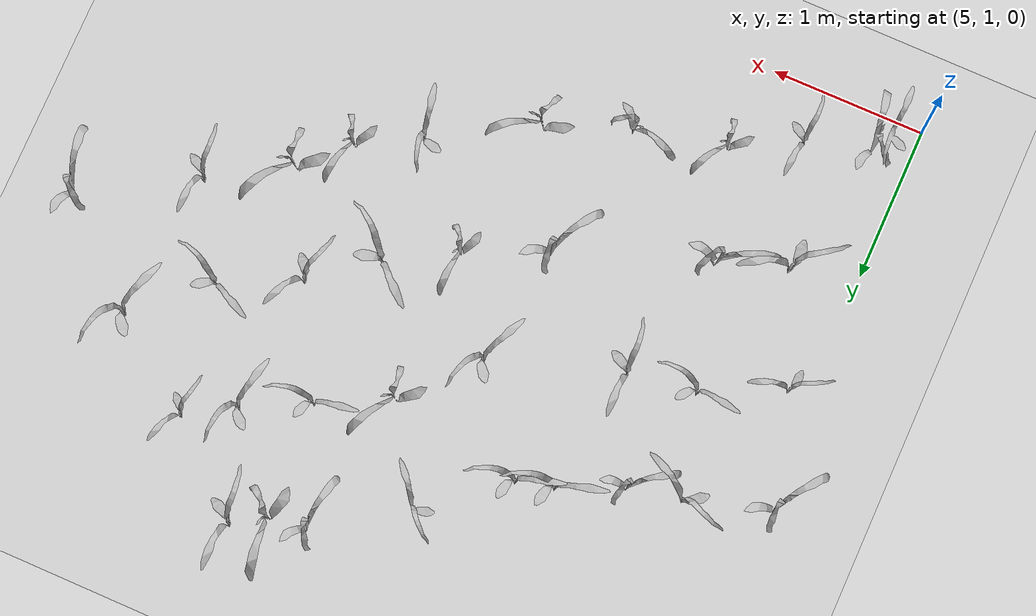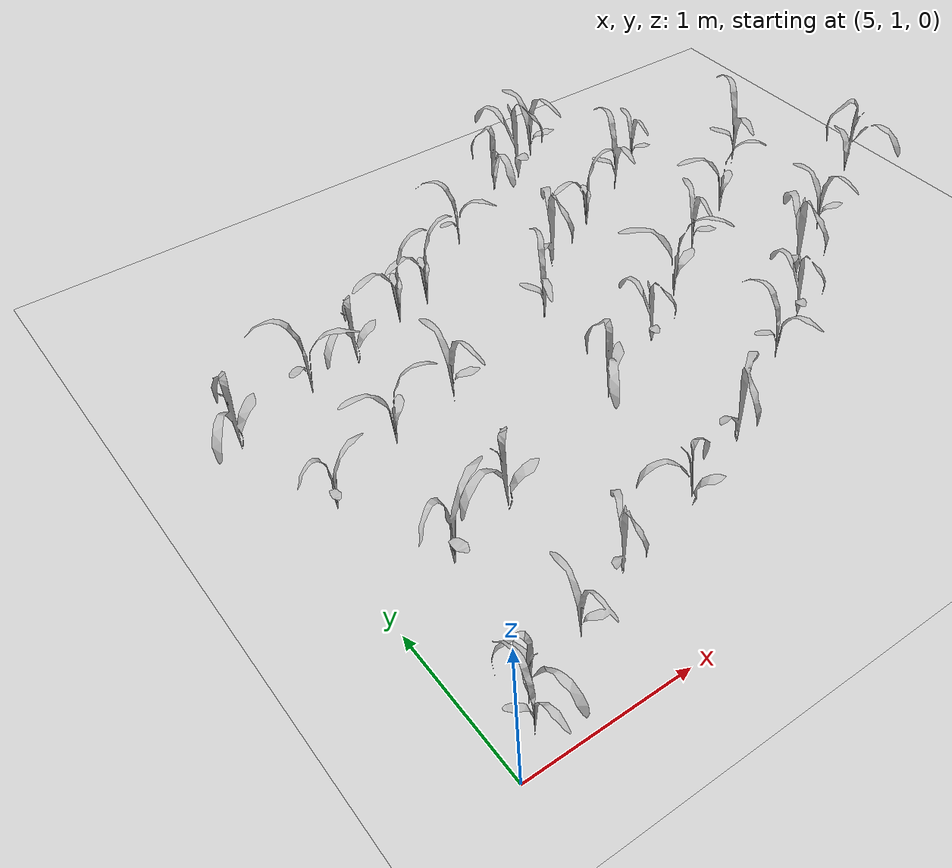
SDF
<sdf version="1.6">
 <world name="default">
  <model name="ground_plane">
   <static>1</static>
   <link name="link">
    <collision name="collision">
     <geometry><plane><normal>0 0 1</normal><size>100 100</size></plane></geometry>
     <surface>
      <contact><collide_bitmask>65535</collide_bitmask></contact>
      <friction><ode><mu>100</mu><mu2>50</mu2></ode></friction>
     </surface>
    </collision>
    <visual name="visual">
     <cast_shadows>0</cast_shadows>
     <geometry><plane><normal>0 0 1</normal><size>100 100</size></plane></geometry>
     <material>
      <script><uri>file://media/materials/scripts/gazebo.material</uri><name>Gazebo/Grey</name></script>
     </material>
    </visual>
   </link>
  </model>
  <model name="maize_02_0034">
   <pose>5.173450004030893 1.1315763102588983 0.05 0 -0 0.6013101745679047</pose>
   <link name="maize_02_0034_link">
    <inertial>
     <mass>5.0</mass>
     <inertia>
      <ixx>0.0033416667</ixx>
      <ixy>0</ixy>
      <ixz>0</ixz>
      <iyy>0.0033416667</iyy>
      <iyz>0</iyz>
      <izz>0.000016666667</izz>
     </inertia>
     <pose>0 0 0.1 0 0 0</pose>
    </inertial>
    <collision name="collision">
     <pose>0 0 0.2 0 -0 0</pose>
     <geometry><box><size>0.02 0.02 0.4</size></box></geometry>
     <surface><friction><ode><mu>10</mu><mu2>10</mu2></ode></friction></surface>
    </collision>
    <visual name="visual">
     <geometry>
      <mesh>
       <uri>model://maize_02/meshes/maize_02.dae</uri>
       <scale>0.5357407810014682 0.5357407810014682 0.5357407810014682</scale>
      </mesh>
     </geometry>
    </visual>
   </link>
  </model>
  <model name="maize_01_0037">
   <pose>5.245392830239333 1.2799043523749243 0.05 0 -0 5.676095836046906</pose>
   <link name="maize_01_0037_link">
    <inertial>
     <mass>5.0</mass>
     <inertia>
      <ixx>0.0033416667</ixx>
      <ixy>0</ixy>
      <ixz>0</ixz>
      <iyy>0.0033416667</iyy>
      <iyz>0</iyz>
      <izz>0.000016666667</izz>
     </inertia>
     <pose>0 0 0.1 0 0 0</pose>
    </inertial>
    <collision name="collision">
     <pose>0 0 0.2 0 -0 0</pose>
     <geometry><box><size>0.02 0.02 0.4</size></box></geometry>
     <surface><friction><ode><mu>10</mu><mu2>10</mu2></ode></friction></surface>
    </collision>
    <visual name="visual">
     <geometry>
      <mesh>
       <uri>model://maize_01/meshes/maize_01.dae</uri>
       <scale>0.5955877137532958 0.5955877137532958 0.5955877137532958</scale>
      </mesh>
     </geometry>
    </visual>
   </link>
  </model>
  <model name="maize_02_0038">
   <pose>5.1380893693495215 2.8742101490766734 0.05 0 -0 2.540761158159463</pose>
   <link name="maize_02_0038_link">
    <inertial>
     <mass>5.0</mass>
     <inertia>
      <ixx>0.0033416667</ixx>
      <ixy>0</ixy>
      <ixz>0</ixz>
      <iyy>0.0033416667</iyy>
      <iyz>0</iyz>
      <izz>0.000016666667</izz>
     </inertia>
     <pose>0 0 0.1 0 0 0</pose>
    </inertial>
    <collision name="collision">
     <pose>0 0 0.2 0 -0 0</pose>
     <geometry><box><size>0.02 0.02 0.4</size></box></geometry>
     <surface><friction><ode><mu>10</mu><mu2>10</mu2></ode></friction></surface>
    </collision>
    <visual name="visual">
     <geometry>
      <mesh>
       <uri>model://maize_02/meshes/maize_02.dae</uri>
       <scale>0.5160342525943922 0.5160342525943922 0.5160342525943922</scale>
      </mesh>
     </geometry>
    </visual>
   </link>
  </model>
  <model name="maize_01_0039">
   <pose>4.931955356481289 3.5976932410319646 0.05 0 -0 4.865696590932189</pose>
   <link name="maize_01_0039_link">
    <inertial>
     <mass>5.0</mass>
     <inertia>
      <ixx>0.0033416667</ixx>
      <ixy>0</ixy>
      <ixz>0</ixz>
      <iyy>0.0033416667</iyy>
      <iyz>0</iyz>
      <izz>0.000016666667</izz>
     </inertia>
     <pose>0 0 0.1 0 0 0</pose>
    </inertial>
    <collision name="collision">
     <pose>0 0 0.2 0 -0 0</pose>
     <geometry><box><size>0.02 0.02 0.4</size></box></geometry>
     <surface><friction><ode><mu>10</mu><mu2>10</mu2></ode></friction></surface>
    </collision>
    <visual name="visual">
     <geometry>
      <mesh>
       <uri>model://maize_01/meshes/maize_01.dae</uri>
       <scale>0.6248026244175258 0.6248026244175258 0.6248026244175258</scale>
      </mesh>
     </geometry>
    </visual>
   </link>
  </model>
  <model name="maize_02_0040">
   <pose>5.425032607445671 2.1745217079992214 0.05 0 -0 2.696416682431122</pose>
   <link name="maize_02_0040_link">
    <inertial>
     <mass>5.0</mass>
     <inertia>
      <ixx>0.0033416667</ixx>
      <ixy>0</ixy>
      <ixz>0</ixz>
      <iyy>0.0033416667</iyy>
      <iyz>0</iyz>
      <izz>0.000016666667</izz>
     </inertia>
     <pose>0 0 0.1 0 0 0</pose>
    </inertial>
    <collision name="collision">
     <pose>0 0 0.2 0 -0 0</pose>
     <geometry><box><size>0.02 0.02 0.4</size></box></geometry>
     <surface><friction><ode><mu>10</mu><mu2>10</mu2></ode></friction></surface>
    </collision>
    <visual name="visual">
     <geometry>
      <mesh>
       <uri>model://maize_02/meshes/maize_02.dae</uri>
       <scale>0.6808555735959543 0.6808555735959543 0.6808555735959543</scale>
      </mesh>
     </geometry>
    </visual>
   </link>
  </model>
  <model name="maize_02_0041">
   <pose>5.656610359364113 1.416103151588152 0.05 0 -0 3.6587617171667746</pose>
   <link name="maize_02_0041_link">
    <inertial>
     <mass>5.0</mass>
     <inertia>
      <ixx>0.0033416667</ixx>
      <ixy>0</ixy>
      <ixz>0</ixz>
      <iyy>0.0033416667</iyy>
      <iyz>0</iyz>
      <izz>0.000016666667</izz>
     </inertia>
     <pose>0 0 0.1 0 0 0</pose>
    </inertial>
    <collision name="collision">
     <pose>0 0 0.2 0 -0 0</pose>
     <geometry><box><size>0.02 0.02 0.4</size></box></geometry>
     <surface><friction><ode><mu>10</mu><mu2>10</mu2></ode></friction></surface>
    </collision>
    <visual name="visual">
     <geometry>
      <mesh>
       <uri>model://maize_02/meshes/maize_02.dae</uri>
       <scale>0.5423544979353322 0.5423544979353322 0.5423544979353322</scale>
      </mesh>
     </geometry>
    </visual>
   </link>
  </model>
  <model name="maize_02_0042">
   <pose>5.647902278528274 3.1154121755145536 0.05 0 -0 5.145269653142296</pose>
   <link name="maize_02_0042_link">
    <inertial>
     <mass>5.0</mass>
     <inertia>
      <ixx>0.0033416667</ixx>
      <ixy>0</ixy>
      <ixz>0</ixz>
      <iyy>0.0033416667</iyy>
      <iyz>0</iyz>
      <izz>0.000016666667</izz>
     </inertia>
     <pose>0 0 0.1 0 0 0</pose>
    </inertial>
    <collision name="collision">
     <pose>0 0 0.2 0 -0 0</pose>
     <geometry><box><size>0.02 0.02 0.4</size></box></geometry>
     <surface><friction><ode><mu>10</mu><mu2>10</mu2></ode></friction></surface>
    </collision>
    <visual name="visual">
     <geometry>
      <mesh>
       <uri>model://maize_02/meshes/maize_02.dae</uri>
       <scale>0.5734318983650517 0.5734318983650517 0.5734318983650517</scale>
      </mesh>
     </geometry>
    </visual>
   </link>
  </model>
  <model name="maize_02_0043">
   <pose>5.46892213704809 3.7659876974544777 0.05 0 -0 1.7053579503772838</pose>
   <link name="maize_02_0043_link">
    <inertial>
     <mass>5.0</mass>
     <inertia>
      <ixx>0.0033416667</ixx>
      <ixy>0</ixy>
      <ixz>0</ixz>
      <iyy>0.0033416667</iyy>
      <iyz>0</iyz>
      <izz>0.000016666667</izz>
     </inertia>
     <pose>0 0 0.1 0 0 0</pose>
    </inertial>
    <collision name="collision">
     <pose>0 0 0.2 0 -0 0</pose>
     <geometry><box><size>0.02 0.02 0.4</size></box></geometry>
     <surface><friction><ode><mu>10</mu><mu2>10</mu2></ode></friction></surface>
    </collision>
    <visual name="visual">
     <geometry>
      <mesh>
       <uri>model://maize_02/meshes/maize_02.dae</uri>
       <scale>0.6276820909123412 0.6276820909123412 0.6276820909123412</scale>
      </mesh>
     </geometry>
    </visual>
   </link>
  </model>
  <model name="maize_01_0044">
   <pose>5.861127298035917 2.3182004030651546 0.05 0 -0 4.281539073289775</pose>
   <link name="maize_01_0044_link">
    <inertial>
     <mass>5.0</mass>
     <inertia>
      <ixx>0.0033416667</ixx>
      <ixy>0</ixy>
      <ixz>0</ixz>
      <iyy>0.0033416667</iyy>
      <iyz>0</iyz>
      <izz>0.000016666667</izz>
     </inertia>
     <pose>0 0 0.1 0 0 0</pose>
    </inertial>
    <collision name="collision">
     <pose>0 0 0.2 0 -0 0</pose>
     <geometry><box><size>0.02 0.02 0.4</size></box></geometry>
     <surface><friction><ode><mu>10</mu><mu2>10</mu2></ode></friction></surface>
    </collision>
    <visual name="visual">
     <geometry>
      <mesh>
       <uri>model://maize_01/meshes/maize_01.dae</uri>
       <scale>0.6476576247625411 0.6476576247625411 0.6476576247625411</scale>
      </mesh>
     </geometry>
    </visual>
   </link>
  </model>
  <model name="maize_01_0045">
   <pose>6.07369020017151 1.606818980580571 0.05 0 -0 1.8673520831411916</pose>
   <link name="maize_01_0045_link">
    <inertial>
     <mass>5.0</mass>
     <inertia>
      <ixx>0.0033416667</ixx>
      <ixy>0</ixy>
      <ixz>0</ixz>
      <iyy>0.0033416667</iyy>
      <iyz>0</iyz>
      <izz>0.000016666667</izz>
     </inertia>
     <pose>0 0 0.1 0 0 0</pose>
    </inertial>
    <collision name="collision">
     <pose>0 0 0.2 0 -0 0</pose>
     <geometry><box><size>0.02 0.02 0.4</size></box></geometry>
     <surface><friction><ode><mu>10</mu><mu2>10</mu2></ode></friction></surface>
    </collision>
    <visual name="visual">
     <geometry>
      <mesh>
       <uri>model://maize_01/meshes/maize_01.dae</uri>
       <scale>0.519210556397071 0.519210556397071 0.519210556397071</scale>
      </mesh>
     </geometry>
    </visual>
   </link>
  </model>
  <model name="maize_02_0046">
   <pose>6.088669658113361 3.195665055816018 0.05 0 -0 3.760366882422363</pose>
   <link name="maize_02_0046_link">
    <inertial>
     <mass>5.0</mass>
     <inertia>
      <ixx>0.0033416667</ixx>
      <ixy>0</ixy>
      <ixz>0</ixz>
      <iyy>0.0033416667</iyy>
      <iyz>0</iyz>
      <izz>0.000016666667</izz>
     </inertia>
     <pose>0 0 0.1 0 0 0</pose>
    </inertial>
    <collision name="collision">
     <pose>0 0 0.2 0 -0 0</pose>
     <geometry><box><size>0.02 0.02 0.4</size></box></geometry>
     <surface><friction><ode><mu>10</mu><mu2>10</mu2></ode></friction></surface>
    </collision>
    <visual name="visual">
     <geometry>
      <mesh>
       <uri>model://maize_02/meshes/maize_02.dae</uri>
       <scale>0.6181978636059108 0.6181978636059108 0.6181978636059108</scale>
      </mesh>
     </geometry>
    </visual>
   </link>
  </model>
  <model name="maize_01_0047">
   <pose>5.812666899277105 3.8336119947379905 0.05 0 -0 4.538551538199304</pose>
   <link name="maize_01_0047_link">
    <inertial>
     <mass>5.0</mass>
     <inertia>
      <ixx>0.0033416667</ixx>
      <ixy>0</ixy>
      <ixz>0</ixz>
      <iyy>0.0033416667</iyy>
      <iyz>0</iyz>
      <izz>0.000016666667</izz>
     </inertia>
     <pose>0 0 0.1 0 0 0</pose>
    </inertial>
    <collision name="collision">
     <pose>0 0 0.2 0 -0 0</pose>
     <geometry><box><size>0.02 0.02 0.4</size></box></geometry>
     <surface><friction><ode><mu>10</mu><mu2>10</mu2></ode></friction></surface>
    </collision>
    <visual name="visual">
     <geometry>
      <mesh>
       <uri>model://maize_01/meshes/maize_01.dae</uri>
       <scale>0.559119796987181 0.559119796987181 0.559119796987181</scale>
      </mesh>
     </geometry>
    </visual>
   </link>
  </model>
  <model name="maize_01_0048">
   <pose>6.661419325211004 1.747810192154578 0.05 0 -0 3.6031002586005627</pose>
   <link name="maize_01_0048_link">
    <inertial>
     <mass>5.0</mass>
     <inertia>
      <ixx>0.0033416667</ixx>
      <ixy>0</ixy>
      <ixz>0</ixz>
      <iyy>0.0033416667</iyy>
      <iyz>0</iyz>
      <izz>0.000016666667</izz>
     </inertia>
     <pose>0 0 0.1 0 0 0</pose>
    </inertial>
    <collision name="collision">
     <pose>0 0 0.2 0 -0 0</pose>
     <geometry><box><size>0.02 0.02 0.4</size></box></geometry>
     <surface><friction><ode><mu>10</mu><mu2>10</mu2></ode></friction></surface>
    </collision>
    <visual name="visual">
     <geometry>
      <mesh>
       <uri>model://maize_01/meshes/maize_01.dae</uri>
       <scale>0.5407954204319174 0.5407954204319174 0.5407954204319174</scale>
      </mesh>
     </geometry>
    </visual>
   </link>
  </model>
  <model name="maize_02_0049">
   <pose>6.213872633588388 4.010818144773291 0.05 0 -0 5.560795651524238</pose>
   <link name="maize_02_0049_link">
    <inertial>
     <mass>5.0</mass>
     <inertia>
      <ixx>0.0033416667</ixx>
      <ixy>0</ixy>
      <ixz>0</ixz>
      <iyy>0.0033416667</iyy>
      <iyz>0</iyz>
      <izz>0.000016666667</izz>
     </inertia>
     <pose>0 0 0.1 0 0 0</pose>
    </inertial>
    <collision name="collision">
     <pose>0 0 0.2 0 -0 0</pose>
     <geometry><box><size>0.02 0.02 0.4</size></box></geometry>
     <surface><friction><ode><mu>10</mu><mu2>10</mu2></ode></friction></surface>
    </collision>
    <visual name="visual">
     <geometry>
      <mesh>
       <uri>model://maize_02/meshes/maize_02.dae</uri>
       <scale>0.6483259051603735 0.6483259051603735 0.6483259051603735</scale>
      </mesh>
     </geometry>
    </visual>
   </link>
  </model>
  <model name="maize_01_0050">
   <pose>6.819943417177551 2.675647688922661 0.05 0 -0 4.927623862870507</pose>
   <link name="maize_01_0050_link">
    <inertial>
     <mass>5.0</mass>
     <inertia>
      <ixx>0.0033416667</ixx>
      <ixy>0</ixy>
      <ixz>0</ixz>
      <iyy>0.0033416667</iyy>
      <iyz>0</iyz>
      <izz>0.000016666667</izz>
     </inertia>
     <pose>0 0 0.1 0 0 0</pose>
    </inertial>
    <collision name="collision">
     <pose>0 0 0.2 0 -0 0</pose>
     <geometry><box><size>0.02 0.02 0.4</size></box></geometry>
     <surface><friction><ode><mu>10</mu><mu2>10</mu2></ode></friction></surface>
    </collision>
    <visual name="visual">
     <geometry>
      <mesh>
       <uri>model://maize_01/meshes/maize_01.dae</uri>
       <scale>0.6453134775930713 0.6453134775930713 0.6453134775930713</scale>
      </mesh>
     </geometry>
    </visual>
   </link>
  </model>
  <model name="maize_01_0051">
   <pose>7.176097702712237 1.9501995400386223 0.05 0 -0 1.4224562361783264</pose>
   <link name="maize_01_0051_link">
    <inertial>
     <mass>5.0</mass>
     <inertia>
      <ixx>0.0033416667</ixx>
      <ixy>0</ixy>
      <ixz>0</ixz>
      <iyy>0.0033416667</iyy>
      <iyz>0</iyz>
      <izz>0.000016666667</izz>
     </inertia>
     <pose>0 0 0.1 0 0 0</pose>
    </inertial>
    <collision name="collision">
     <pose>0 0 0.2 0 -0 0</pose>
     <geometry><box><size>0.02 0.02 0.4</size></box></geometry>
     <surface><friction><ode><mu>10</mu><mu2>10</mu2></ode></friction></surface>
    </collision>
    <visual name="visual">
     <geometry>
      <mesh>
       <uri>model://maize_01/meshes/maize_01.dae</uri>
       <scale>0.6210933130867763 0.6210933130867763 0.6210933130867763</scale>
      </mesh>
     </geometry>
    </visual>
   </link>
  </model>
  <model name="maize_02_0052">
   <pose>6.930112307712232 3.4571894819744644 0.05 0 -0 0.14000726303885583</pose>
   <link name="maize_02_0052_link">
    <inertial>
     <mass>5.0</mass>
     <inertia>
      <ixx>0.0033416667</ixx>
      <ixy>0</ixy>
      <ixz>0</ixz>
      <iyy>0.0033416667</iyy>
      <iyz>0</iyz>
      <izz>0.000016666667</izz>
     </inertia>
     <pose>0 0 0.1 0 0 0</pose>
    </inertial>
    <collision name="collision">
     <pose>0 0 0.2 0 -0 0</pose>
     <geometry><box><size>0.02 0.02 0.4</size></box></geometry>
     <surface><friction><ode><mu>10</mu><mu2>10</mu2></ode></friction></surface>
    </collision>
    <visual name="visual">
     <geometry>
      <mesh>
       <uri>model://maize_02/meshes/maize_02.dae</uri>
       <scale>0.629068109132628 0.629068109132628 0.629068109132628</scale>
      </mesh>
     </geometry>
    </visual>
   </link>
  </model>
  <model name="maize_02_0053">
   <pose>6.451609377266911 4.070755772190355 0.05 0 -0 5.577265913502692</pose>
   <link name="maize_02_0053_link">
    <inertial>
     <mass>5.0</mass>
     <inertia>
      <ixx>0.0033416667</ixx>
      <ixy>0</ixy>
      <ixz>0</ixz>
      <iyy>0.0033416667</iyy>
      <iyz>0</iyz>
      <izz>0.000016666667</izz>
     </inertia>
     <pose>0 0 0.1 0 0 0</pose>
    </inertial>
    <collision name="collision">
     <pose>0 0 0.2 0 -0 0</pose>
     <geometry><box><size>0.02 0.02 0.4</size></box></geometry>
     <surface><friction><ode><mu>10</mu><mu2>10</mu2></ode></friction></surface>
    </collision>
    <visual name="visual">
     <geometry>
      <mesh>
       <uri>model://maize_02/meshes/maize_02.dae</uri>
       <scale>0.6156272397810196 0.6156272397810196 0.6156272397810196</scale>
      </mesh>
     </geometry>
    </visual>
   </link>
  </model>
  <model name="maize_01_0054">
   <pose>7.329146099023048 2.888236026491402 0.05 0 -0 2.327244573519761</pose>
   <link name="maize_01_0054_link">
    <inertial>
     <mass>5.0</mass>
     <inertia>
      <ixx>0.0033416667</ixx>
      <ixy>0</ixy>
      <ixz>0</ixz>
      <iyy>0.0033416667</iyy>
      <iyz>0</iyz>
      <izz>0.000016666667</izz>
     </inertia>
     <pose>0 0 0.1 0 0 0</pose>
    </inertial>
    <collision name="collision">
     <pose>0 0 0.2 0 -0 0</pose>
     <geometry><box><size>0.02 0.02 0.4</size></box></geometry>
     <surface><friction><ode><mu>10</mu><mu2>10</mu2></ode></friction></surface>
    </collision>
    <visual name="visual">
     <geometry>
      <mesh>
       <uri>model://maize_01/meshes/maize_01.dae</uri>
       <scale>0.5294459946861463 0.5294459946861463 0.5294459946861463</scale>
      </mesh>
     </geometry>
    </visual>
   </link>
  </model>
  <model name="maize_02_0055">
   <pose>7.8285254278657215 2.3223799133054857 0.05 0 -0 0.7960078963273205</pose>
   <link name="maize_02_0055_link">
    <inertial>
     <mass>5.0</mass>
     <inertia>
      <ixx>0.0033416667</ixx>
      <ixy>0</ixy>
      <ixz>0</ixz>
      <iyy>0.0033416667</iyy>
      <iyz>0</iyz>
      <izz>0.000016666667</izz>
     </inertia>
     <pose>0 0 0.1 0 0 0</pose>
    </inertial>
    <collision name="collision">
     <pose>0 0 0.2 0 -0 0</pose>
     <geometry><box><size>0.02 0.02 0.4</size></box></geometry>
     <surface><friction><ode><mu>10</mu><mu2>10</mu2></ode></friction></surface>
    </collision>
    <visual name="visual">
     <geometry>
      <mesh>
       <uri>model://maize_02/meshes/maize_02.dae</uri>
       <scale>0.5754723237472845 0.5754723237472845 0.5754723237472845</scale>
      </mesh>
     </geometry>
    </visual>
   </link>
  </model>
  <model name="maize_01_0056">
   <pose>7.318262782014508 3.8903772393028757 0.05 0 -0 1.8713256439240544</pose>
   <link name="maize_01_0056_link">
    <inertial>
     <mass>5.0</mass>
     <inertia>
      <ixx>0.0033416667</ixx>
      <ixy>0</ixy>
      <ixz>0</ixz>
      <iyy>0.0033416667</iyy>
      <iyz>0</iyz>
      <izz>0.000016666667</izz>
     </inertia>
     <pose>0 0 0.1 0 0 0</pose>
    </inertial>
    <collision name="collision">
     <pose>0 0 0.2 0 -0 0</pose>
     <geometry><box><size>0.02 0.02 0.4</size></box></geometry>
     <surface><friction><ode><mu>10</mu><mu2>10</mu2></ode></friction></surface>
    </collision>
    <visual name="visual">
     <geometry>
      <mesh>
       <uri>model://maize_01/meshes/maize_01.dae</uri>
       <scale>0.6308571241090226 0.6308571241090226 0.6308571241090226</scale>
      </mesh>
     </geometry>
    </visual>
   </link>
  </model>
  <model name="maize_02_0057">
   <pose>6.957344218312825 4.466297191330817 0.05 0 -0 1.3022067154739176</pose>
   <link name="maize_02_0057_link">
    <inertial>
     <mass>5.0</mass>
     <inertia>
      <ixx>0.0033416667</ixx>
      <ixy>0</ixy>
      <ixz>0</ixz>
      <iyy>0.0033416667</iyy>
      <iyz>0</iyz>
      <izz>0.000016666667</izz>
     </inertia>
     <pose>0 0 0.1 0 0 0</pose>
    </inertial>
    <collision name="collision">
     <pose>0 0 0.2 0 -0 0</pose>
     <geometry><box><size>0.02 0.02 0.4</size></box></geometry>
     <surface><friction><ode><mu>10</mu><mu2>10</mu2></ode></friction></surface>
    </collision>
    <visual name="visual">
     <geometry>
      <mesh>
       <uri>model://maize_02/meshes/maize_02.dae</uri>
       <scale>0.5397917053143074 0.5397917053143074 0.5397917053143074</scale>
      </mesh>
     </geometry>
    </visual>
   </link>
  </model>
  <model name="maize_02_0058">
   <pose>7.740311193523281 3.1622778124250255 0.05 0 -0 4.55645770910715</pose>
   <link name="maize_02_0058_link">
    <inertial>
     <mass>5.0</mass>
     <inertia>
      <ixx>0.0033416667</ixx>
      <ixy>0</ixy>
      <ixz>0</ixz>
      <iyy>0.0033416667</iyy>
      <iyz>0</iyz>
      <izz>0.000016666667</izz>
     </inertia>
     <pose>0 0 0.1 0 0 0</pose>
    </inertial>
    <collision name="collision">
     <pose>0 0 0.2 0 -0 0</pose>
     <geometry><box><size>0.02 0.02 0.4</size></box></geometry>
     <surface><friction><ode><mu>10</mu><mu2>10</mu2></ode></friction></surface>
    </collision>
    <visual name="visual">
     <geometry>
      <mesh>
       <uri>model://maize_02/meshes/maize_02.dae</uri>
       <scale>0.6975633659424696 0.6975633659424696 0.6975633659424696</scale>
      </mesh>
     </geometry>
    </visual>
   </link>
  </model>
  <model name="maize_01_0059">
   <pose>8.214798287639393 2.52315740392052 0.05 0 -0 2.168341874585953</pose>
   <link name="maize_01_0059_link">
    <inertial>
     <mass>5.0</mass>
     <inertia>
      <ixx>0.0033416667</ixx>
      <ixy>0</ixy>
      <ixz>0</ixz>
      <iyy>0.0033416667</iyy>
      <iyz>0</iyz>
      <izz>0.000016666667</izz>
     </inertia>
     <pose>0 0 0.1 0 0 0</pose>
    </inertial>
    <collision name="collision">
     <pose>0 0 0.2 0 -0 0</pose>
     <geometry><box><size>0.02 0.02 0.4</size></box></geometry>
     <surface><friction><ode><mu>10</mu><mu2>10</mu2></ode></friction></surface>
    </collision>
    <visual name="visual">
     <geometry>
      <mesh>
       <uri>model://maize_01/meshes/maize_01.dae</uri>
       <scale>0.5401773418898053 0.5401773418898053 0.5401773418898053</scale>
      </mesh>
     </geometry>
    </visual>
   </link>
  </model>
  <model name="maize_02_0060">
   <pose>7.776323258849664 4.126220983770531 0.05 0 -0 5.451876533369126</pose>
   <link name="maize_02_0060_link">
    <inertial>
     <mass>5.0</mass>
     <inertia>
      <ixx>0.0033416667</ixx>
      <ixy>0</ixy>
      <ixz>0</ixz>
      <iyy>0.0033416667</iyy>
      <iyz>0</iyz>
      <izz>0.000016666667</izz>
     </inertia>
     <pose>0 0 0.1 0 0 0</pose>
    </inertial>
    <collision name="collision">
     <pose>0 0 0.2 0 -0 0</pose>
     <geometry><box><size>0.02 0.02 0.4</size></box></geometry>
     <surface><friction><ode><mu>10</mu><mu2>10</mu2></ode></friction></surface>
    </collision>
    <visual name="visual">
     <geometry>
      <mesh>
       <uri>model://maize_02/meshes/maize_02.dae</uri>
       <scale>0.580580716307189 0.580580716307189 0.580580716307189</scale>
      </mesh>
     </geometry>
    </visual>
   </link>
  </model>
  <model name="maize_01_0061">
   <pose>7.503388663505379 4.847617820641133 0.05 0 -0 5.303476084214717</pose>
   <link name="maize_01_0061_link">
    <inertial>
     <mass>5.0</mass>
     <inertia>
      <ixx>0.0033416667</ixx>
      <ixy>0</ixy>
      <ixz>0</ixz>
      <iyy>0.0033416667</iyy>
      <iyz>0</iyz>
      <izz>0.000016666667</izz>
     </inertia>
     <pose>0 0 0.1 0 0 0</pose>
    </inertial>
    <collision name="collision">
     <pose>0 0 0.2 0 -0 0</pose>
     <geometry><box><size>0.02 0.02 0.4</size></box></geometry>
     <surface><friction><ode><mu>10</mu><mu2>10</mu2></ode></friction></surface>
    </collision>
    <visual name="visual">
     <geometry>
      <mesh>
       <uri>model://maize_01/meshes/maize_01.dae</uri>
       <scale>0.5933942800435028 0.5933942800435028 0.5933942800435028</scale>
      </mesh>
     </geometry>
    </visual>
   </link>
  </model>
  <model name="maize_02_0062">
   <pose>8.147690364455979 3.4454430077109963 0.05 0 -0 3.3018028432920907</pose>
   <link name="maize_02_0062_link">
    <inertial>
     <mass>5.0</mass>
     <inertia>
      <ixx>0.0033416667</ixx>
      <ixy>0</ixy>
      <ixz>0</ixz>
      <iyy>0.0033416667</iyy>
      <iyz>0</iyz>
      <izz>0.000016666667</izz>
     </inertia>
     <pose>0 0 0.1 0 0 0</pose>
    </inertial>
    <collision name="collision">
     <pose>0 0 0.2 0 -0 0</pose>
     <geometry><box><size>0.02 0.02 0.4</size></box></geometry>
     <surface><friction><ode><mu>10</mu><mu2>10</mu2></ode></friction></surface>
    </collision>
    <visual name="visual">
     <geometry>
      <mesh>
       <uri>model://maize_02/meshes/maize_02.dae</uri>
       <scale>0.5879981750545812 0.5879981750545812 0.5879981750545812</scale>
      </mesh>
     </geometry>
    </visual>
   </link>
  </model>
  <model name="maize_01_0063">
   <pose>8.480306677012578 2.802798292118132 0.05 0 -0 1.8126883799980622</pose>
   <link name="maize_01_0063_link">
    <inertial>
     <mass>5.0</mass>
     <inertia>
      <ixx>0.0033416667</ixx>
      <ixy>0</ixy>
      <ixz>0</ixz>
      <iyy>0.0033416667</iyy>
      <iyz>0</iyz>
      <izz>0.000016666667</izz>
     </inertia>
     <pose>0 0 0.1 0 0 0</pose>
    </inertial>
    <collision name="collision">
     <pose>0 0 0.2 0 -0 0</pose>
     <geometry><box><size>0.02 0.02 0.4</size></box></geometry>
     <surface><friction><ode><mu>10</mu><mu2>10</mu2></ode></friction></surface>
    </collision>
    <visual name="visual">
     <geometry>
      <mesh>
       <uri>model://maize_01/meshes/maize_01.dae</uri>
       <scale>0.6981865114352546 0.6981865114352546 0.6981865114352546</scale>
      </mesh>
     </geometry>
    </visual>
   </link>
  </model>
  <model name="maize_02_0064">
   <pose>8.191391289642306 4.332902744500693 0.05 0 -0 0.3472410017837826</pose>
   <link name="maize_02_0064_link">
    <inertial>
     <mass>5.0</mass>
     <inertia>
      <ixx>0.0033416667</ixx>
      <ixy>0</ixy>
      <ixz>0</ixz>
      <iyy>0.0033416667</iyy>
      <iyz>0</iyz>
      <izz>0.000016666667</izz>
     </inertia>
     <pose>0 0 0.1 0 0 0</pose>
    </inertial>
    <collision name="collision">
     <pose>0 0 0.2 0 -0 0</pose>
     <geometry><box><size>0.02 0.02 0.4</size></box></geometry>
     <surface><friction><ode><mu>10</mu><mu2>10</mu2></ode></friction></surface>
    </collision>
    <visual name="visual">
     <geometry>
      <mesh>
       <uri>model://maize_02/meshes/maize_02.dae</uri>
       <scale>0.6312110685913908 0.6312110685913908 0.6312110685913908</scale>
      </mesh>
     </geometry>
    </visual>
   </link>
  </model>
  <model name="maize_01_0065">
   <pose>7.738505413488072 4.874598562536035 0.05 0 -0 2.527846063091431</pose>
   <link name="maize_01_0065_link">
    <inertial>
     <mass>5.0</mass>
     <inertia>
      <ixx>0.0033416667</ixx>
      <ixy>0</ixy>
      <ixz>0</ixz>
      <iyy>0.0033416667</iyy>
      <iyz>0</iyz>
      <izz>0.000016666667</izz>
     </inertia>
     <pose>0 0 0.1 0 0 0</pose>
    </inertial>
    <collision name="collision">
     <pose>0 0 0.2 0 -0 0</pose>
     <geometry><box><size>0.02 0.02 0.4</size></box></geometry>
     <surface><friction><ode><mu>10</mu><mu2>10</mu2></ode></friction></surface>
    </collision>
    <visual name="visual">
     <geometry>
      <mesh>
       <uri>model://maize_01/meshes/maize_01.dae</uri>
       <scale>0.6850605409255908 0.6850605409255908 0.6850605409255908</scale>
      </mesh>
     </geometry>
    </visual>
   </link>
  </model>
  <model name="maize_02_0066">
   <pose>8.620801087915961 3.6978261131318044 0.05 0 -0 4.844247147093885</pose>
   <link name="maize_02_0066_link">
    <inertial>
     <mass>5.0</mass>
     <inertia>
      <ixx>0.0033416667</ixx>
      <ixy>0</ixy>
      <ixz>0</ixz>
      <iyy>0.0033416667</iyy>
      <iyz>0</iyz>
      <izz>0.000016666667</izz>
     </inertia>
     <pose>0 0 0.1 0 0 0</pose>
    </inertial>
    <collision name="collision">
     <pose>0 0 0.2 0 -0 0</pose>
     <geometry><box><size>0.02 0.02 0.4</size></box></geometry>
     <surface><friction><ode><mu>10</mu><mu2>10</mu2></ode></friction></surface>
    </collision>
    <visual name="visual">
     <geometry>
      <mesh>
       <uri>model://maize_02/meshes/maize_02.dae</uri>
       <scale>0.6082635596136865 0.6082635596136865 0.6082635596136865</scale>
      </mesh>
     </geometry>
    </visual>
   </link>
  </model>
  <model name="maize_02_0067">
   <pose>8.984948833374355 3.1081504039789483 0.05 0 -0 3.7034358115413837</pose>
   <link name="maize_02_0067_link">
    <inertial>
     <mass>5.0</mass>
     <inertia>
      <ixx>0.0033416667</ixx>
      <ixy>0</ixy>
      <ixz>0</ixz>
      <iyy>0.0033416667</iyy>
      <iyz>0</iyz>
      <izz>0.000016666667</izz>
     </inertia>
     <pose>0 0 0.1 0 0 0</pose>
    </inertial>
    <collision name="collision">
     <pose>0 0 0.2 0 -0 0</pose>
     <geometry><box><size>0.02 0.02 0.4</size></box></geometry>
     <surface><friction><ode><mu>10</mu><mu2>10</mu2></ode></friction></surface>
    </collision>
    <visual name="visual">
     <geometry>
      <mesh>
       <uri>model://maize_02/meshes/maize_02.dae</uri>
       <scale>0.5760374355184541 0.5760374355184541 0.5760374355184541</scale>
      </mesh>
     </geometry>
    </visual>
   </link>
  </model>
  <model name="maize_02_0068">
   <pose>8.499840929169569 4.518124718271493 0.05 0 -0 3.416506790707343</pose>
   <link name="maize_02_0068_link">
    <inertial>
     <mass>5.0</mass>
     <inertia>
      <ixx>0.0033416667</ixx>
      <ixy>0</ixy>
      <ixz>0</ixz>
      <iyy>0.0033416667</iyy>
      <iyz>0</iyz>
      <izz>0.000016666667</izz>
     </inertia>
     <pose>0 0 0.1 0 0 0</pose>
    </inertial>
    <collision name="collision">
     <pose>0 0 0.2 0 -0 0</pose>
     <geometry><box><size>0.02 0.02 0.4</size></box></geometry>
     <surface><friction><ode><mu>10</mu><mu2>10</mu2></ode></friction></surface>
    </collision>
    <visual name="visual">
     <geometry>
      <mesh>
       <uri>model://maize_02/meshes/maize_02.dae</uri>
       <scale>0.5017014243725131 0.5017014243725131 0.5017014243725131</scale>
      </mesh>
     </geometry>
    </visual>
   </link>
  </model>
  <model name="maize_02_0069">
   <pose>7.94807783193621 5.015115232302538 0.05 0 -0 3.7643552606745434</pose>
   <link name="maize_02_0069_link">
    <inertial>
     <mass>5.0</mass>
     <inertia>
      <ixx>0.0033416667</ixx>
      <ixy>0</ixy>
      <ixz>0</ixz>
      <iyy>0.0033416667</iyy>
      <iyz>0</iyz>
      <izz>0.000016666667</izz>
     </inertia>
     <pose>0 0 0.1 0 0 0</pose>
    </inertial>
    <collision name="collision">
     <pose>0 0 0.2 0 -0 0</pose>
     <geometry><box><size>0.02 0.02 0.4</size></box></geometry>
     <surface><friction><ode><mu>10</mu><mu2>10</mu2></ode></friction></surface>
    </collision>
    <visual name="visual">
     <geometry>
      <mesh>
       <uri>model://maize_02/meshes/maize_02.dae</uri>
       <scale>0.6540370859772677 0.6540370859772677 0.6540370859772677</scale>
      </mesh>
     </geometry>
    </visual>
   </link>
  </model>
  <model name="maize_02_0070">
   <pose>9.083749923217399 4.076576754700455 0.05 0 -0 0.2144528770516308</pose>
   <link name="maize_02_0070_link">
    <inertial>
     <mass>5.0</mass>
     <inertia>
      <ixx>0.0033416667</ixx>
      <ixy>0</ixy>
      <ixz>0</ixz>
      <iyy>0.0033416667</iyy>
      <iyz>0</iyz>
      <izz>0.000016666667</izz>
     </inertia>
     <pose>0 0 0.1 0 0 0</pose>
    </inertial>
    <collision name="collision">
     <pose>0 0 0.2 0 -0 0</pose>
     <geometry><box><size>0.02 0.02 0.4</size></box></geometry>
     <surface><friction><ode><mu>10</mu><mu2>10</mu2></ode></friction></surface>
    </collision>
    <visual name="visual">
     <geometry>
      <mesh>
       <uri>model://maize_02/meshes/maize_02.dae</uri>
       <scale>0.6847575886117405 0.6847575886117405 0.6847575886117405</scale>
      </mesh>
     </geometry>
    </visual>
   </link>
  </model>
  <model name="maize_01_0071">
   <pose>9.686643552123217 3.518317232424998 0.05 0 -0 5.68558539880503</pose>
   <link name="maize_01_0071_link">
    <inertial>
     <mass>5.0</mass>
     <inertia>
      <ixx>0.0033416667</ixx>
      <ixy>0</ixy>
      <ixz>0</ixz>
      <iyy>0.0033416667</iyy>
      <iyz>0</iyz>
      <izz>0.000016666667</izz>
     </inertia>
     <pose>0 0 0.1 0 0 0</pose>
    </inertial>
    <collision name="collision">
     <pose>0 0 0.2 0 -0 0</pose>
     <geometry><box><size>0.02 0.02 0.4</size></box></geometry>
     <surface><friction><ode><mu>10</mu><mu2>10</mu2></ode></friction></surface>
    </collision>
    <visual name="visual">
     <geometry>
      <mesh>
       <uri>model://maize_01/meshes/maize_01.dae</uri>
       <scale>0.6526810664462596 0.6526810664462596 0.6526810664462596</scale>
      </mesh>
     </geometry>
    </visual>
   </link>
  </model>
 </world>
</sdf>
